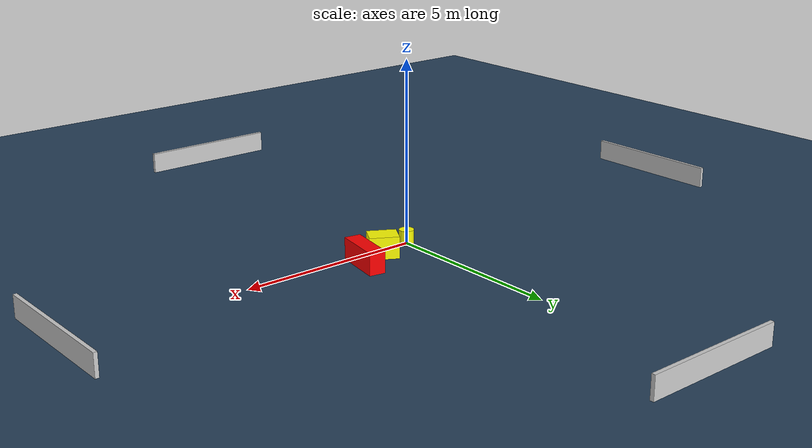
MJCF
<?xml version="1.0" ?>
<mujoco model="generated_environment">
  <option timestep="0.01" integrator="RK4" cone="elliptic"/>
  <default>
    <geom density="1"/>
  </default>
  <asset>
    <texture builtin="gradient" height="3072" name="skybox" rgb1="0.3 0.5 0.7" rgb2="0 0 0" type="skybox" width="512"/>
    <texture builtin="checker" height="300" name="groundplane" rgb1="0.2 0.3 0.4" rgb2="0.1 0.2 0.3" type="2d" width="300"/>
    <material name="groundplane" reflectance="0.2" texrepeat="5 5" texture="groundplane"/>
  </asset>
  <worldbody>
    <light dir="0 0 -1" directional="true" pos="0 0 1.5"/>
    <geom condim="3" friction="0.5 0.005 0.001" material="groundplane" name="floor" pos="0 0 0" size="0 0 0.05" type="plane"/>
    <body name="walls">
      <geom name="wall_1" condim="4" pos="-10.0 0.0 0.3" rgba="0.800000011920929 0.800000011920929 0.800000011920929 1.0" size="0.05 2.0 0.3" type="box"/>
      <geom name="wall_2" condim="4" pos="10.0 0.0 0.3" rgba="0.800000011920929 0.800000011920929 0.800000011920929 1.0" size="0.05 2.0 0.3" type="box"/>
      <geom name="wall_3" condim="4" pos="0.0 -10.0 0.3" rgba="0.800000011920929 0.800000011920929 0.800000011920929 1.0" size="2.0 0.05 0.3" type="box"/>
      <geom name="wall_4" condim="4" pos="0.0 10.0 0.3" rgba="0.800000011920929 0.800000011920929 0.800000011920929 1.0" size="2.0 0.05 0.3" type="box"/>
    </body>
    <body name="robot">
      <joint name="joint_x" type="slide" pos="0 0 0" axis="1 0 0"/>
      <joint name="joint_y" type="slide" pos="0 0 0" axis="0 1 0"/>
      <geom name="robot" type="cylinder" pos="0.0 0.0 0.2" size="0.2 0.2 0.0" mass="5.0" friction="1.0 0.005 0.0001" condim="4" rgba="1.0 1.0 0.0 1.0"/>
    </body>
    <body name="obstacle_1_movable">
      <geom name="obstacle_1_movable" condim="4" pos="1.0471782513583672 0.2995458181198563 0.3" euler="0 0 330.2283785556881" friction="0.0 0.005 0.001" rgba="1.0 1.0 0.0 1.0" size="0.3957840154709411 0.2941709728288949 0.3" type="box" mass="0.1"/>
      <joint type="free"/>
    </body>
    <body name="obstacle_2_static">
      <geom name="obstacle_2_static" condim="4" pos="1.8629413231585665 0.5805179435999607 0.3" euler="0 0 169.79328787409872" friction="0.0 0.005 0.001" rgba="1.0 0.0 0.0 1.0" size="0.2227663399490238 0.6787953086025242 0.3" type="box"/>
    </body>
  </worldbody>
  <actuator>
    <motor name="actuator_x" joint="joint_x" gear="1" ctrlrange="-1 1"/>
    <motor name="actuator_y" joint="joint_y" gear="1" ctrlrange="-1 1"/>
  </actuator>
</mujoco>
